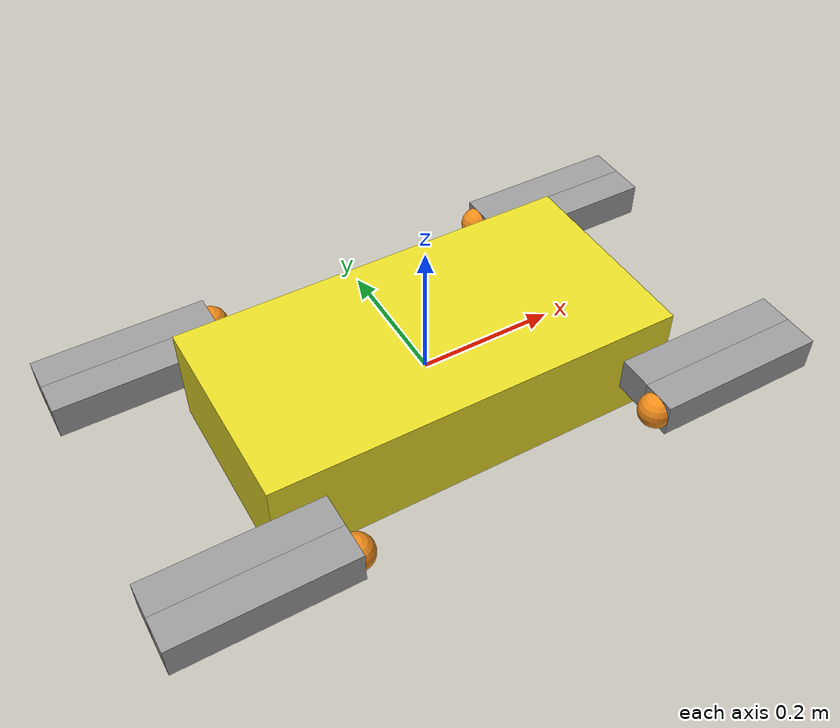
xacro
<?xml version="1.0"?>

<robot name="quadruped" xmlns:xacro="http://ros.org/wiki/xacro">

  <xacro:property name="namespace" value="robot" />
  <xacro:property name="mass" value="0.01" />

  <!-- Macro for the inertia of a box -->
  <xacro:macro name="box_inertia" params="x y z mass">
    <inertia ixx="${0.0833333 * mass * (y*y + z*z)}" ixy="0.0" ixz="0.0"
      iyy="${0.0833333 * mass * (x*x + z*z)}" iyz="0.0"
      izz="${0.0833333 * mass * (x*x + y*y)}" />
  </xacro:macro>

    <!-- Macro for the inertial properties of a box -->
  <xacro:macro name="box_inertial" params="x y z mass *origin">
    <inertial>
      <mass value="${mass}" />
      <xacro:insert_block name="origin" />
      <xacro:box_inertia x="${x}" y="${y}" z="${z}" mass="${mass}" />
    </inertial>
  </xacro:macro>

  <!-- Macro for the inertia of a ellipsoid -->
  <xacro:macro name="ellipsoid_inertia" params="radius mass">
    <inertia ixx="${0.4 * mass * radius * radius}" ixy="0.0" ixz="0.0"
      iyy="${0.4 * mass * radius * radius}" iyz="0.0"
      izz="${0.4 * mass * radius * radius}" />
  </xacro:macro>

    <!-- Macro for the inertial properties of a ellipsoid -->
  <xacro:macro name="ellipsoid_inertial" params="radius mass *origin">
    <inertial>
      <mass value="${mass}" />
      <xacro:insert_block name="origin" />
      <xacro:ellipsoid_inertia radius="${radius}" mass="${mass}" />
    </inertial>
  </xacro:macro>

  <link name="${namespace}/base_link" >
    <visual>
      <origin xyz="0 0 0" />
      <geometry>
        <box size="0.0 0.0 0.0" />
      </geometry>
    </visual>
  </link>

  <link name="${namespace}/body">
    <xacro:box_inertial x="0.6" y="0.3" z="0.15" mass="1.1">
      <origin xyz="0 0 0" />
    </xacro:box_inertial>
    <visual>
      <origin xyz="0 0 0" rpy="0 0 0" />
      <geometry>
        <box size="0.6 0.3 0.15"/>
      </geometry>
    </visual>
    <collision>
      <origin xyz="0 0 0" rpy="0 0 0" />
      <geometry>
        <box size="0.6 0.3 0.15"/>
       </geometry>
    </collision>
  </link>

  <link name="${namespace}/front_left_thigh">
    <xacro:box_inertial x="0.25" y="0.05" z="0.05" mass="0.5">
      <origin xyz="0.1 0 0" />
    </xacro:box_inertial>
    <visual>
      <origin xyz="0.1 0 0" rpy="0 0 0" />
      <geometry>
        <box size="0.25 0.05 0.05"/>
      </geometry>
    </visual>
    <collision>
      <origin xyz="0.1 0 0" rpy="0 0 0" />
      <geometry>
        <box size="0.25 0.05 0.05"/>
       </geometry>
    </collision>
  </link>

  <link name="${namespace}/front_left_lower_leg">
    <xacro:box_inertial x="0.25" y="0.05" z="0.05" mass="0.5">
      <origin xyz="0.1 0 0" />
    </xacro:box_inertial>
    <visual>
      <origin xyz="0.1 0 0" rpy="0 0 0" />
      <geometry>
        <box size="0.25 0.05 0.05"/>
      </geometry>
    </visual>
    <collision>
      <origin xyz="0.1 0 0" rpy="0 0 0" />
      <geometry>
        <box size="0.25 0.05 0.05"/>
       </geometry>
    </collision>
  </link>

  <link name="${namespace}/front_right_thigh">
    <xacro:box_inertial x="0.25" y="0.05" z="0.05" mass="0.5">
      <origin xyz="0.1 0 0" />
    </xacro:box_inertial>
    <visual>
      <origin xyz="0.1 0 0" rpy="0 0 0" />
      <geometry>
        <box size="0.25 0.05 0.05"/>
      </geometry>
    </visual>
    <collision>
      <origin xyz="0.1 0 0" rpy="0 0 0" />
      <geometry>
        <box size="0.25 0.05 0.05"/>
       </geometry>
    </collision>
  </link>

  <link name="${namespace}/front_right_lower_leg">
    <xacro:box_inertial x="0.25" y="0.05" z="0.05" mass="0.5">
      <origin xyz="0.1 0 0" />
    </xacro:box_inertial>
    <visual>
      <origin xyz="0.1 0 0" rpy="0 0 0" />
      <geometry>
        <box size="0.25 0.05 0.05"/>
      </geometry>
    </visual>
    <collision>
      <origin xyz="0.1 0 0" rpy="0 0 0" />
      <geometry>
        <box size="0.25 0.05 0.05"/>
       </geometry>
    </collision>
  </link>

  <link name="${namespace}/rear_left_thigh">
    <xacro:box_inertial x="0.25" y="0.05" z="0.05" mass="0.5">
      <origin xyz="0.1 0 0" />
    </xacro:box_inertial>
    <visual>
      <origin xyz="0.1 0 0" rpy="0 0 0" />
      <geometry>
        <box size="0.25 0.05 0.05"/>
      </geometry>
    </visual>
    <collision>
      <origin xyz="0.1 0 0" rpy="0 0 0" />
      <geometry>
        <box size="0.25 0.05 0.05"/>
       </geometry>
    </collision>
  </link>

  <link name="${namespace}/rear_left_lower_leg">
    <xacro:box_inertial x="0.25" y="0.05" z="0.05" mass="0.5">
      <origin xyz="0.1 0 0" />
    </xacro:box_inertial>
    <visual>
      <origin xyz="0.1 0 0" rpy="0 0 0" />
      <geometry>
        <box size="0.25 0.05 0.05"/>
      </geometry>
    </visual>
    <collision>
      <origin xyz="0.1 0 0" rpy="0 0 0" />
      <geometry>
        <box size="0.25 0.05 0.05"/>
       </geometry>
    </collision>
  </link>

  <link name="${namespace}/rear_right_thigh">
    <xacro:box_inertial x="0.25" y="0.05" z="0.05" mass="0.5">
      <origin xyz="0.1 0 0" />
    </xacro:box_inertial>
    <visual>
      <origin xyz="0.1 0 0" rpy="0 0 0" />
      <geometry>
        <box size="0.25 0.05 0.05"/>
      </geometry>
    </visual>
    <collision>
      <origin xyz="0.1 0 0" rpy="0 0 0" />
      <geometry>
        <box size="0.25 0.05 0.05"/>
       </geometry>
    </collision>
  </link>

  <link name="${namespace}/rear_right_lower_leg">
    <xacro:box_inertial x="0.25" y="0.05" z="0.05" mass="0.5">
      <origin xyz="0.1 0 0" />
    </xacro:box_inertial>
    <visual>
      <origin xyz="0.1 0 0" rpy="0 0 0" />
      <geometry>
        <box size="0.25 0.05 0.05"/>
      </geometry>
    </visual>
    <collision>
      <origin xyz="0.1 0 0" rpy="0 0 0" />
      <geometry>
        <box size="0.25 0.05 0.05"/>
       </geometry>
    </collision>
  </link>

  <link name="${namespace}/rear_right_ball">
    <xacro:ellipsoid_inertial radius="0.025" mass="0.1">
      <origin xyz="0 0 0" />
    </xacro:ellipsoid_inertial>
    <visual>
      <origin xyz="0.0 0 0" rpy="0 0 0" />
      <geometry>
        <sphere radius="0.025"/>
      </geometry>
    </visual>
    <collision>
      <origin xyz="0.0 0 0" rpy="0 0 0" />
      <geometry>
        <sphere radius="0.025"/>
       </geometry>
       <surface>
          <friction>
            <ode>
              <mu>4.01</mu>
              <mu2>10.01</mu2>
            </ode>
          </friction>
        </surface>
    </collision>
  </link>

  <link name="${namespace}/rear_left_ball">
    <xacro:ellipsoid_inertial radius="0.025" mass="0.1">
      <origin xyz="0 0 0" />
    </xacro:ellipsoid_inertial>
    <visual>
      <origin xyz="0.0 0 0" rpy="0 0 0" />
      <geometry>
        <sphere radius="0.025"/>
      </geometry>
    </visual>
    <collision>
      <origin xyz="0.0 0 0" rpy="0 0 0" />
      <geometry>
        <sphere radius="0.025"/>
       </geometry>
       <surface>
          <friction>
            <ode>
              <mu>4.01</mu>
              <mu2>10.01</mu2>
            </ode>
          </friction>
        </surface>
    </collision>
  </link>

  <link name="${namespace}/front_left_ball">
    <xacro:ellipsoid_inertial radius="0.025" mass="0.1">
      <origin xyz="0 0 0" />
    </xacro:ellipsoid_inertial>
    <visual>
      <origin xyz="0.0 0 0" rpy="0 0 0" />
      <geometry>
        <sphere radius="0.025"/>
      </geometry>
    </visual>
    <collision>
      <origin xyz="0.0 0 0" rpy="0 0 0" />
      <geometry>
        <sphere radius="0.025"/>
       </geometry>
       <surface>
          <friction>
            <ode>
              <mu>4.01</mu>
              <mu2>10.01</mu2>
            </ode>
          </friction>
        </surface>
    </collision>
  </link>

  <link name="${namespace}/front_right_ball">
    <xacro:ellipsoid_inertial radius="0.025" mass="0.1">
      <origin xyz="0 0 0" />
    </xacro:ellipsoid_inertial>
    <visual>
      <origin xyz="0.0 0 0" rpy="0 0 0" />
      <geometry>
        <sphere radius="0.025"/>
      </geometry>
    </visual>
    <collision>
      <origin xyz="0.0 0 0" rpy="0 0 0" />
      <geometry>
        <sphere radius="0.025"/>
       </geometry>
       <surface>
          <friction>
            <ode>
              <mu>4.01</mu>
              <mu2>10.01</mu2>
            </ode>
          </friction>
        </surface>
    </collision>
  </link>

  <joint name="${namespace}/base_joint" type="fixed">
    <origin xyz="0.0 0 0.0" rpy="0 0 0" />
    <parent link="${namespace}/base_link" />
    <child link="${namespace}/body" />
  </joint>

  <joint name="${namespace}/front_left_hip" type="revolute">
    <origin xyz="0.25 0.175 0.0" rpy="0.0 0.0 0 " />
    <parent link="${namespace}/body" />
    <child link="${namespace}/front_left_thigh" />
      <axis xyz="0 1 0" />
      <limit lower="${-pi}" upper="${pi}" effort="50" velocity="1" />
  </joint>

  <joint name="${namespace}/front_left_knee" type="revolute">
    <origin xyz="0.2 0.05 0.0" rpy="0 ${pi} 0" />
    <parent link="${namespace}/front_left_thigh" />
    <child link="${namespace}/front_left_lower_leg" />
      <axis xyz="0 1 0" />
      <limit lower="${-pi}" upper="${pi}" effort="50" velocity="1" />
  </joint>

  <joint name="${namespace}/front_right_hip" type="revolute">
    <origin xyz="0.25 -0.175 0.0" rpy="0.0 0.0 0 " />
    <parent link="${namespace}/body" />
    <child link="${namespace}/front_right_thigh" />
      <axis xyz="0 1 0" />
      <limit lower="${-pi}" upper="${pi}" effort="50" velocity="1" />
  </joint>

  <joint name="${namespace}/front_right_knee" type="revolute">
    <origin xyz="0.2 -0.05 0.0" rpy="0 ${pi} 0" />
    <parent link="${namespace}/front_right_thigh" />
    <child link="${namespace}/front_right_lower_leg" />
      <axis xyz="0 1 0" />
      <limit lower="${-pi}" upper="${pi}" effort="50" velocity="1" />
  </joint>

  <joint name="${namespace}/rear_left_hip" type="revolute">
    <origin xyz="-0.25 0.175 0.0" rpy="0.0 ${pi} 0 " />
    <parent link="${namespace}/body" />
    <child link="${namespace}/rear_left_thigh" />
      <axis xyz="0 -1 0" />
      <limit lower="${-pi}" upper="${pi}" effort="50" velocity="1" />
  </joint>

  <joint name="${namespace}/rear_left_knee" type="revolute">
    <origin xyz="0.2 0.05 0.0" rpy="0 ${pi} 0" />
    <parent link="${namespace}/rear_left_thigh" />
    <child link="${namespace}/rear_left_lower_leg" />
      <axis xyz="0 -1 0" />
      <limit lower="${-pi}" upper="${pi}" effort="50" velocity="1" />
  </joint>

  <joint name="${namespace}/rear_right_hip" type="revolute">
    <origin xyz="-0.25 -0.175 0.0" rpy="0.0 ${pi} 0 " />
    <parent link="${namespace}/body" />
    <child link="${namespace}/rear_right_thigh" />
      <axis xyz="0 -1 0" />
      <limit lower="${-pi}" upper="${pi}" effort="50" velocity="1" />
  </joint>

  <joint name="${namespace}/rear_right_knee" type="revolute">
    <origin xyz="0.2 -0.05 0.0" rpy="0 ${pi} 0" />
    <parent link="${namespace}/rear_right_thigh" />
    <child link="${namespace}/rear_right_lower_leg" />
      <axis xyz="0 -1 0" />
      <limit lower="${-pi}" upper="${pi}" effort="50" velocity="1" />
  </joint>

  <joint name="${namespace}/front_right_ankle" type="fixed">
    <origin xyz="0.225 -0.0 0.0" rpy="0 0 0" />
    <parent link="${namespace}/front_right_lower_leg" />
    <child link="${namespace}/front_right_ball" />
  </joint>
  <joint name="${namespace}/front_left_ankle" type="fixed">
    <origin xyz="0.225 -0.0 0.0" rpy="0 0 0" />
    <parent link="${namespace}/front_left_lower_leg" />
    <child link="${namespace}/front_left_ball" />
  </joint>

  <joint name="${namespace}/rear_right_ankle" type="fixed">
    <origin xyz="0.225 -0.0 0.0" rpy="0 0 0" />
    <parent link="${namespace}/rear_right_lower_leg" />
    <child link="${namespace}/rear_right_ball" />
  </joint>
  <joint name="${namespace}/rear_left_ankle" type="fixed">
    <origin xyz="0.225 -0.0 0.0" rpy="0 0 0" />
    <parent link="${namespace}/rear_left_lower_leg" />
    <child link="${namespace}/rear_left_ball" />
  </joint>

  <!-- Interface the plugin with the movable joints -->
  <ros2_control name="GazeboSystem" type="system">
    <hardware>
      <plugin>gazebo_ros2_control/GazeboSystem</plugin>
    </hardware>
    <joint name="${namespace}/front_right_hip">
      <param name="pos_kp">20</param>
      <param name="pos_ki">0.5</param>
      <param name="pos_kd">1</param>
      <param name="pos_max_integral_error">1</param>
      <command_interface name="position_pid"/>
      <state_interface name="position"/>
      <state_interface name="velocity"/>
      <state_interface name="effort"/>
    </joint>
    <joint name="${namespace}/front_left_hip">
      <param name="pos_kp">20</param>
      <param name="pos_ki">0.5</param>
      <param name="pos_kd">1</param>
      <param name="pos_max_integral_error">1</param>
      <command_interface name="position_pid"/>
      <state_interface name="position"/>
      <state_interface name="velocity"/>
      <state_interface name="effort"/>
    </joint>
    <joint name="${namespace}/front_right_knee">
      <param name="pos_kp">10</param>
      <param name="pos_ki">0.5</param>
      <param name="pos_kd">1</param>
      <param name="pos_max_integral_error">1</param>
      <command_interface name="position_pid"/>
      <state_interface name="position"/>
      <state_interface name="velocity"/>
      <state_interface name="effort"/>
    </joint>
    <joint name="${namespace}/front_left_knee">
      <param name="pos_kp">10</param>
      <param name="pos_ki">0.5</param>
      <param name="pos_kd">1</param>
      <param name="pos_max_integral_error">1</param>
      <command_interface name="position_pid"/>
      <state_interface name="position"/>
      <state_interface name="velocity"/>
      <state_interface name="effort"/>
    </joint>
    <joint name="${namespace}/rear_right_hip">
      <param name="pos_kp">20</param>
      <param name="pos_ki">0.5</param>
      <param name="pos_kd">1</param>
      <param name="pos_max_integral_error">1</param>
      <command_interface name="position_pid"/>
      <state_interface name="position"/>
      <state_interface name="velocity"/>
      <state_interface name="effort"/>
    </joint>
    <joint name="${namespace}/rear_left_hip">
      <param name="pos_kp">20</param>
      <param name="pos_ki">0.5</param>
      <param name="pos_kd">1</param>
      <param name="pos_max_integral_error">1</param>
      <command_interface name="position_pid"/>
      <state_interface name="position"/>
      <state_interface name="velocity"/>
      <state_interface name="effort"/>
    </joint>
    <joint name="${namespace}/rear_right_knee">
      <param name="pos_kp">10</param>
      <param name="pos_ki">0.5</param>
      <param name="pos_kd">1</param>
      <param name="pos_max_integral_error">1</param>
      <command_interface name="position_pid"/>
      <state_interface name="position"/>
      <state_interface name="velocity"/>
      <state_interface name="effort"/>
    </joint>
    <joint name="${namespace}/rear_left_knee">
      <param name="pos_kp">10</param>
      <param name="pos_ki">0.5</param>
      <param name="pos_kd">1</param>
      <param name="pos_max_integral_error">1</param>
      <command_interface name="position_pid"/>
      <state_interface name="position"/>
      <state_interface name="velocity"/>
      <state_interface name="effort"/>
    </joint>
  </ros2_control>

  <gazebo>
    <plugin filename="libgazebo_ros2_control.so" name="gazebo_ros2_control">
      <parameters>$(find biorobotics_tutorial)/models/quadruped_config.yaml</parameters>
    </plugin>
  </gazebo>

  <gazebo reference="${namespace}/front_left_thigh">
    <material>Gazebo/Grey</material>
      <mu1>10.01</mu1>
      <mu2>1.01</mu2>
  </gazebo>

  <gazebo reference="${namespace}/front_right_thigh">
    <material>Gazebo/Grey</material>
      <mu1>10.01</mu1>
      <mu2>1.01</mu2>
  </gazebo>

  <gazebo reference="${namespace}/rear_left_thigh">
    <material>Gazebo/Grey</material>
      <mu1>10.01</mu1>
      <mu2>1.01</mu2>
  </gazebo>

  <gazebo reference="${namespace}/rear_right_thigh">
    <material>Gazebo/Grey</material>
      <mu1>10.01</mu1>
      <mu2>1.01</mu2>
  </gazebo>

  <gazebo reference="${namespace}/front_left_lower_leg">
    <material>Gazebo/Grey</material>
      <mu1>10.01</mu1>
      <mu2>1.01</mu2>
  </gazebo>

  <gazebo reference="${namespace}/front_right_lower_leg">
    <material>Gazebo/Grey</material>
      <mu1>10.01</mu1>
      <mu2>1.01</mu2>
  </gazebo>

  <gazebo reference="${namespace}/rear_left_lower_leg">
    <material>Gazebo/Grey</material>
      <mu1>10.01</mu1>
      <mu2>1.01</mu2>
  </gazebo>

  <gazebo reference="${namespace}/rear_right_lower_leg">
    <material>Gazebo/Grey</material>
      <mu1>10.01</mu1>
      <mu2>1.01</mu2>
  </gazebo>

  <gazebo reference="${namespace}/body">
    <material>Gazebo/Yellow</material>
      <mu1>150.01</mu1>
      <mu2>150.01</mu2>
  </gazebo>

  <gazebo reference="${namespace}/front_left_ball">
    <material>Gazebo/Orange</material>
      <mu1>40.01</mu1>
      <mu2>10.01</mu2>
  </gazebo>

  <gazebo reference="${namespace}/front_right_ball">
    <material>Gazebo/Orange</material>
      <mu1>40.01</mu1>
      <mu2>10.01</mu2>
  </gazebo>

  <gazebo reference="${namespace}/rear_left_ball">
    <material>Gazebo/Orange</material>
      <mu1>40.01</mu1>
      <mu2>10.01</mu2>
  </gazebo>

  <gazebo reference="${namespace}/rear_right_ball">
    <material>Gazebo/Orange</material>
      <mu1>40.01</mu1>
      <mu2>10.01</mu2>
  </gazebo>

</robot>
